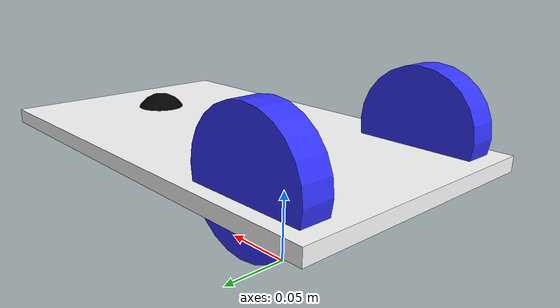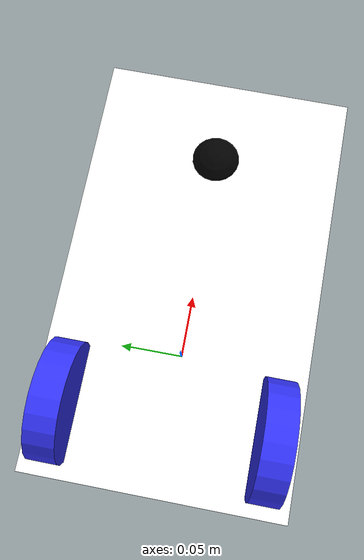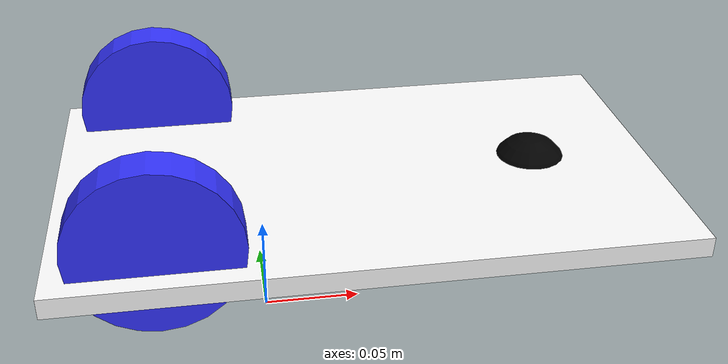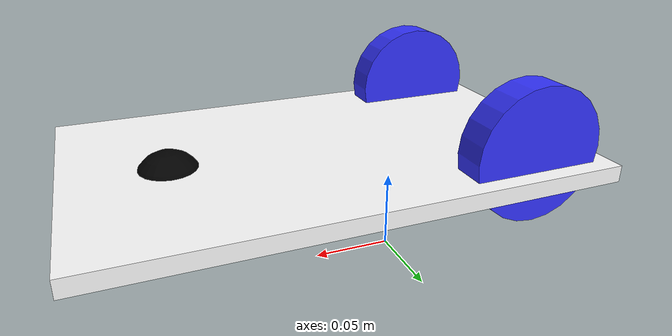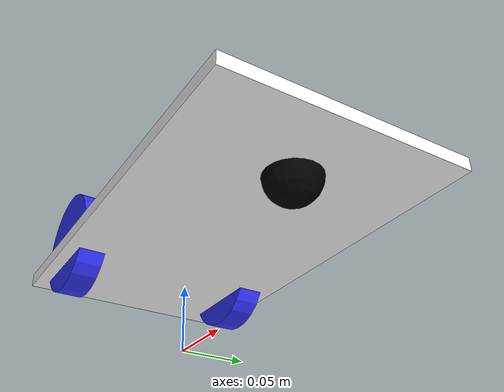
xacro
<?xml version="1.0"?>
<robot xmlns:xacro="http://www.ros.org/wiki/xacro" >

    <xacro:include filename="inertial_macros.xacro"/>

    <material name="white">
        <color rgba="1 1 1 1" />
    </material>

    <material name="orange">
        <color rgba="1 0.3 0.1 1"/>
    </material>

    <material name="blue">
        <color rgba="0.2 0.2 1 1"/>
    </material>

    <material name="black">
        <color rgba="0 0 0 1"/>
    </material>

    <!-- BASE LINK -->

    <link name="base_link">

    </link>

    <!-- CHASSIS LINK -->

    <joint name="chassis_joint" type="fixed">
        <parent link="base_link"/>
        <child link="chassis"/>
        <origin xyz="-0.1 0 0"/>
    </joint>

    <link name="chassis">
        <visual>
            <origin xyz="0.15 0 0.075" rpy="0 0 0"/>
            <geometry>
                <box size="0.3 0.18 0.01"/>
            </geometry>
            <material name="white"/>
        </visual>
        <xacro:inertial_box mass="0.5" x="0.3" y="0.18" z="0.01">
            <origin xyz="0.15 0 0.075" rpy="0 0 0"/>
        </xacro:inertial_box>
    </link>

    <!-- RIGHT FRONT WHEEL LINK -->

    <joint name="left_wheel_joint" type="continuous">
        <parent link="base_link"/>
        <child link="left_wheel"/>
        <origin xyz="-0.05 0.07 0.09" rpy="-${pi/2} 0 0"/>
        <axis xyz="0 0 1"/>
    </joint>

    <link name="left_wheel">
        <visual>
            <geometry>
                <cylinder length="0.02" radius="0.04" />
            </geometry>
            <material name="blue"/>
        </visual>
        <xacro:inertial_cylinder mass="0.1" length="0.02" radius="0.04">
            <origin xyz="0 0 0" rpy="0 0 0"/>
        </xacro:inertial_cylinder>
    </link>

    <!-- RIGHT BACK WHEEL LINK -->

    <joint name="right_wheel_joint" type="continuous">
        <parent link="base_link"/>
        <child link="right_wheel"/>
        <origin xyz="-0.05 -0.07 0.09" rpy="${pi/2} 0 0"/>
        <axis xyz="0 0 -1"/>
    </joint>

    <link name="right_wheel">
        <visual>
            <geometry>
                <cylinder length="0.02" radius="0.04" />/>
            </geometry>
            <material name="blue"/>
        </visual>
        <xacro:inertial_cylinder mass="0.1" length="0.02" radius="0.04">
            <origin xyz="0 0 0" rpy="0 0 0"/>
        </xacro:inertial_cylinder>
    </link>

<!-- CASTER WHEEL -->

<joint name="caster_wheel_joint" type="fixed">
    <parent link="chassis"/>
    <child link="caster_wheel"/>
    <origin xyz="0.24 0 0.07" rpy="0 0 0"/>
</joint>

<link name="caster_wheel">
    <visual>
        <geometry>
            <sphere radius="0.02" />
        </geometry>
        <material name="black"/>
    </visual>
    <xacro:inertial_sphere mass="0.1" radius="0.02">
        <origin xyz="0 0 0" rpy="0 0 0"/>
    </xacro:inertial_sphere>
</link>

</robot>
